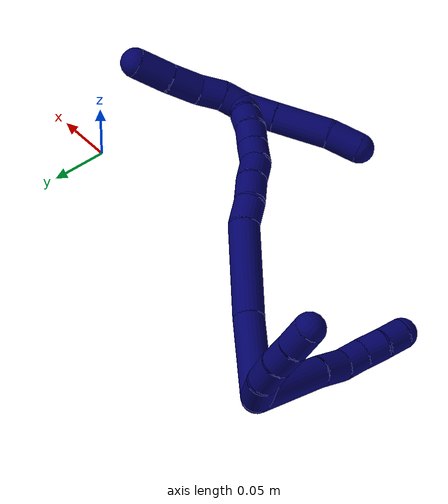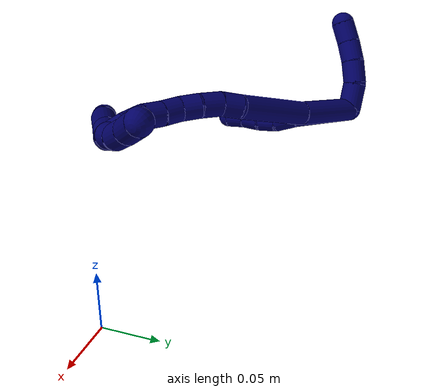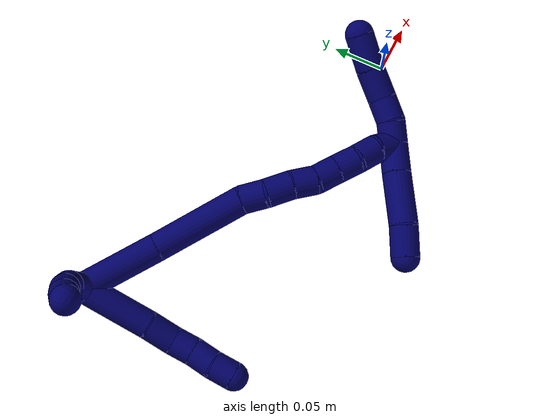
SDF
<sdf version="1.7">
 <world name="default">
  <model name="7">
   <static>0</static>
   <link name="7">
    <collision name="collision-cylinder-e_1_2_8">
     <pose>0.001528 -0.031947 -0.001751 1.62555 0.047731 0.050417</pose>
     <geometry><cylinder><radius>0.0125</radius><length>0.064063</length></cylinder></geometry>
     <surface>
      <friction><ode><mu>1.16</mu><mu2>1.16</mu2><slip1>0</slip1><slip2>0</slip2></ode></friction>
      <contact><ode><kp>1e+06</kp><kd>1</kd><max_vel>0</max_vel><min_depth>0.001</min_depth></ode></contact>
     </surface>
    </collision>
    <visual name="visual-cylinder-e_1_2_8">
     <pose>0.001528 -0.031947 -0.001751 1.62555 0.047731 0.050417</pose>
     <geometry><cylinder><radius>0.0125</radius><length>0.064063</length></cylinder></geometry>
     <material><ambient>0.003922 0 0.403922 1</ambient></material>
    </visual>
    <collision name="collision-cylinder-e_2_8_9">
     <pose>0.002289 -0.076691 -0.004036 1.61249 -0.059891 -0.062439</pose>
     <geometry><cylinder><radius>0.0125</radius><length>0.025662</length></cylinder></geometry>
     <surface>
      <friction><ode><mu>1.16</mu><mu2>1.16</mu2><slip1>0</slip1><slip2>0</slip2></ode></friction>
      <contact><ode><kp>1e+06</kp><kd>1</kd><max_vel>0</max_vel><min_depth>0.001</min_depth></ode></contact>
     </surface>
    </collision>
    <visual name="visual-cylinder-e_2_8_9">
     <pose>0.002289 -0.076691 -0.004036 1.61249 -0.059891 -0.062439</pose>
     <geometry><cylinder><radius>0.0125</radius><length>0.025662</length></cylinder></geometry>
     <material><ambient>0.003922 0 0.403922 1</ambient></material>
    </visual>
    <collision name="collision-cylinder-e_3_9_10">
     <pose>0.003766 -0.099305 -0.004779 1.59213 0.224835 0.229641</pose>
     <geometry><cylinder><radius>0.0125</radius><length>0.020146</length></cylinder></geometry>
     <surface>
      <friction><ode><mu>1.16</mu><mu2>1.16</mu2><slip1>0</slip1><slip2>0</slip2></ode></friction>
      <contact><ode><kp>1e+06</kp><kd>1</kd><max_vel>0</max_vel><min_depth>0.001</min_depth></ode></contact>
     </surface>
    </collision>
    <visual name="visual-cylinder-e_3_9_10">
     <pose>0.003766 -0.099305 -0.004779 1.59213 0.224835 0.229641</pose>
     <geometry><cylinder><radius>0.0125</radius><length>0.020146</length></cylinder></geometry>
     <material><ambient>0.003922 0 0.403922 1</ambient></material>
    </visual>
    <collision name="collision-cylinder-e_4_10_11">
     <pose>0.009074 -0.118613 -0.003922 1.45885 0.310285 0.277803</pose>
     <geometry><cylinder><radius>0.0125</radius><length>0.020058</length></cylinder></geometry>
     <surface>
      <friction><ode><mu>1.16</mu><mu2>1.16</mu2><slip1>0</slip1><slip2>0</slip2></ode></friction>
      <contact><ode><kp>1e+06</kp><kd>1</kd><max_vel>0</max_vel><min_depth>0.001</min_depth></ode></contact>
     </surface>
    </collision>
    <visual name="visual-cylinder-e_4_10_11">
     <pose>0.009074 -0.118613 -0.003922 1.45885 0.310285 0.277803</pose>
     <geometry><cylinder><radius>0.0125</radius><length>0.020058</length></cylinder></geometry>
     <material><ambient>0.003922 0 0.403922 1</ambient></material>
    </visual>
    <collision name="collision-cylinder-e_5_11_6">
     <pose>0.014363 -0.137888 -0.002985 1.58415 0.223754 0.226737</pose>
     <geometry><cylinder><radius>0.0125</radius><length>0.02007</length></cylinder></geometry>
     <surface>
      <friction><ode><mu>1.16</mu><mu2>1.16</mu2><slip1>0</slip1><slip2>0</slip2></ode></friction>
      <contact><ode><kp>1e+06</kp><kd>1</kd><max_vel>0</max_vel><min_depth>0.001</min_depth></ode></contact>
     </surface>
    </collision>
    <visual name="visual-cylinder-e_5_11_6">
     <pose>0.014363 -0.137888 -0.002985 1.58415 0.223754 0.226737</pose>
     <geometry><cylinder><radius>0.0125</radius><length>0.02007</length></cylinder></geometry>
     <material><ambient>0.003922 0 0.403922 1</ambient></material>
    </visual>
    <collision name="collision-cylinder-e_1_2_12">
     <pose>0.01281 0.005111 0.006041 -0.702152 1.01745 -0.402962</pose>
     <geometry><cylinder><radius>0.0125</radius><length>0.030114</length></cylinder></geometry>
     <surface>
      <friction><ode><mu>1.16</mu><mu2>1.16</mu2><slip1>0</slip1><slip2>0</slip2></ode></friction>
      <contact><ode><kp>1e+06</kp><kd>1</kd><max_vel>0</max_vel><min_depth>0.001</min_depth></ode></contact>
     </surface>
    </collision>
    <visual name="visual-cylinder-e_1_2_12">
     <pose>0.01281 0.005111 0.006041 -0.702152 1.01745 -0.402962</pose>
     <geometry><cylinder><radius>0.0125</radius><length>0.030114</length></cylinder></geometry>
     <material><ambient>0.003922 0 0.403922 1</ambient></material>
    </visual>
    <collision name="collision-cylinder-e_2_12_13">
     <pose>0.036894 0.010655 0.017296 -0.083077 1.13629 -0.053051</pose>
     <geometry><cylinder><radius>0.0125</radius><length>0.024858</length></cylinder></geometry>
     <surface>
      <friction><ode><mu>1.16</mu><mu2>1.16</mu2><slip1>0</slip1><slip2>0</slip2></ode></friction>
      <contact><ode><kp>1e+06</kp><kd>1</kd><max_vel>0</max_vel><min_depth>0.001</min_depth></ode></contact>
     </surface>
    </collision>
    <visual name="visual-cylinder-e_2_12_13">
     <pose>0.036894 0.010655 0.017296 -0.083077 1.13629 -0.053051</pose>
     <geometry><cylinder><radius>0.0125</radius><length>0.024858</length></cylinder></geometry>
     <material><ambient>0.003922 0 0.403922 1</ambient></material>
    </visual>
    <collision name="collision-cylinder-e_3_13_14">
     <pose>0.058159 0.010055 0.027366 0.209854 1.10961 0.130349</pose>
     <geometry><cylinder><radius>0.0125</radius><length>0.022312</length></cylinder></geometry>
     <surface>
      <friction><ode><mu>1.16</mu><mu2>1.16</mu2><slip1>0</slip1><slip2>0</slip2></ode></friction>
      <contact><ode><kp>1e+06</kp><kd>1</kd><max_vel>0</max_vel><min_depth>0.001</min_depth></ode></contact>
     </surface>
    </collision>
    <visual name="visual-cylinder-e_3_13_14">
     <pose>0.058159 0.010055 0.027366 0.209854 1.10961 0.130349</pose>
     <geometry><cylinder><radius>0.0125</radius><length>0.022312</length></cylinder></geometry>
     <material><ambient>0.003922 0 0.403922 1</ambient></material>
    </visual>
    <collision name="collision-cylinder-e_4_14_5">
     <pose>0.078498 0.007345 0.036593 0.366245 1.14593 0.237837</pose>
     <geometry><cylinder><radius>0.0125</radius><length>0.022716</length></cylinder></geometry>
     <surface>
      <friction><ode><mu>1.16</mu><mu2>1.16</mu2><slip1>0</slip1><slip2>0</slip2></ode></friction>
      <contact><ode><kp>1e+06</kp><kd>1</kd><max_vel>0</max_vel><min_depth>0.001</min_depth></ode></contact>
     </surface>
    </collision>
    <visual name="visual-cylinder-e_4_14_5">
     <pose>0.078498 0.007345 0.036593 0.366245 1.14593 0.237837</pose>
     <geometry><cylinder><radius>0.0125</radius><length>0.022716</length></cylinder></geometry>
     <material><ambient>0.003922 0 0.403922 1</ambient></material>
    </visual>
    <collision name="collision-cylinder-e_1_2_15">
     <pose>0.013041 -0.016824 -0.029174 2.6185 0.369447 1.21883</pose>
     <geometry><cylinder><radius>0.0125</radius><length>0.072227</length></cylinder></geometry>
     <surface>
      <friction><ode><mu>1.16</mu><mu2>1.16</mu2><slip1>0</slip1><slip2>0</slip2></ode></friction>
      <contact><ode><kp>1e+06</kp><kd>1</kd><max_vel>0</max_vel><min_depth>0.001</min_depth></ode></contact>
     </surface>
    </collision>
    <visual name="visual-cylinder-e_1_2_15">
     <pose>0.013041 -0.016824 -0.029174 2.6185 0.369447 1.21883</pose>
     <geometry><cylinder><radius>0.0125</radius><length>0.072227</length></cylinder></geometry>
     <material><ambient>0.003922 0 0.403922 1</ambient></material>
    </visual>
    <collision name="collision-cylinder-e_2_15_16">
     <pose>0.046218 -0.051807 -0.089491 2.61371 0.509377 1.53347</pose>
     <geometry><cylinder><radius>0.0125</radius><length>0.082588</length></cylinder></geometry>
     <surface>
      <friction><ode><mu>1.16</mu><mu2>1.16</mu2><slip1>0</slip1><slip2>0</slip2></ode></friction>
      <contact><ode><kp>1e+06</kp><kd>1</kd><max_vel>0</max_vel><min_depth>0.001</min_depth></ode></contact>
     </surface>
    </collision>
    <visual name="visual-cylinder-e_2_15_16">
     <pose>0.046218 -0.051807 -0.089491 2.61371 0.509377 1.53347</pose>
     <geometry><cylinder><radius>0.0125</radius><length>0.082588</length></cylinder></geometry>
     <material><ambient>0.003922 0 0.403922 1</ambient></material>
    </visual>
    <collision name="collision-cylinder-e_3_16_17">
     <pose>0.071741 -0.076719 -0.126866 2.31601 0.530282 1.11</pose>
     <geometry><cylinder><radius>0.0125</radius><length>0.021303</length></cylinder></geometry>
     <surface>
      <friction><ode><mu>1.16</mu><mu2>1.16</mu2><slip1>0</slip1><slip2>0</slip2></ode></friction>
      <contact><ode><kp>1e+06</kp><kd>1</kd><max_vel>0</max_vel><min_depth>0.001</min_depth></ode></contact>
     </surface>
    </collision>
    <visual name="visual-cylinder-e_3_16_17">
     <pose>0.071741 -0.076719 -0.126866 2.31601 0.530282 1.11</pose>
     <geometry><cylinder><radius>0.0125</radius><length>0.021303</length></cylinder></geometry>
     <material><ambient>0.003922 0 0.403922 1</ambient></material>
    </visual>
    <collision name="collision-cylinder-e_4_17_18">
     <pose>0.080797 -0.090484 -0.141481 2.44505 0.323855 0.845604</pose>
     <geometry><cylinder><radius>0.0125</radius><length>0.023056</length></cylinder></geometry>
     <surface>
      <friction><ode><mu>1.16</mu><mu2>1.16</mu2><slip1>0</slip1><slip2>0</slip2></ode></friction>
      <contact><ode><kp>1e+06</kp><kd>1</kd><max_vel>0</max_vel><min_depth>0.001</min_depth></ode></contact>
     </surface>
    </collision>
    <visual name="visual-cylinder-e_4_17_18">
     <pose>0.080797 -0.090484 -0.141481 2.44505 0.323855 0.845604</pose>
     <geometry><cylinder><radius>0.0125</radius><length>0.023056</length></cylinder></geometry>
     <material><ambient>0.003922 0 0.403922 1</ambient></material>
    </visual>
    <collision name="collision-cylinder-e_5_18_19">
     <pose>0.08688 -0.104726 -0.156693 2.32763 0.238161 0.541515</pose>
     <geometry><cylinder><radius>0.0125</radius><length>0.020469</length></cylinder></geometry>
     <surface>
      <friction><ode><mu>1.16</mu><mu2>1.16</mu2><slip1>0</slip1><slip2>0</slip2></ode></friction>
      <contact><ode><kp>1e+06</kp><kd>1</kd><max_vel>0</max_vel><min_depth>0.001</min_depth></ode></contact>
     </surface>
    </collision>
    <visual name="visual-cylinder-e_5_18_19">
     <pose>0.08688 -0.104726 -0.156693 2.32763 0.238161 0.541515</pose>
     <geometry><cylinder><radius>0.0125</radius><length>0.020469</length></cylinder></geometry>
     <material><ambient>0.003922 0 0.403922 1</ambient></material>
    </visual>
    <collision name="collision-cylinder-e_6_19_20">
     <pose>0.091314 -0.116901 -0.172048 2.61611 0.202098 0.721022</pose>
     <geometry><cylinder><radius>0.0125</radius><length>0.020122</length></cylinder></geometry>
     <surface>
      <friction><ode><mu>1.16</mu><mu2>1.16</mu2><slip1>0</slip1><slip2>0</slip2></ode></friction>
      <contact><ode><kp>1e+06</kp><kd>1</kd><max_vel>0</max_vel><min_depth>0.001</min_depth></ode></contact>
     </surface>
    </collision>
    <visual name="visual-cylinder-e_6_19_20">
     <pose>0.091314 -0.116901 -0.172048 2.61611 0.202098 0.721022</pose>
     <geometry><cylinder><radius>0.0125</radius><length>0.020122</length></cylinder></geometry>
     <material><ambient>0.003922 0 0.403922 1</ambient></material>
    </visual>
    <collision name="collision-cylinder-e_7_20_21">
     <pose>0.096076 -0.126864 -0.188811 2.59439 0.277033 0.922103</pose>
     <geometry><cylinder><radius>0.0125</radius><length>0.020056</length></cylinder></geometry>
     <surface>
      <friction><ode><mu>1.16</mu><mu2>1.16</mu2><slip1>0</slip1><slip2>0</slip2></ode></friction>
      <contact><ode><kp>1e+06</kp><kd>1</kd><max_vel>0</max_vel><min_depth>0.001</min_depth></ode></contact>
     </surface>
    </collision>
    <visual name="visual-cylinder-e_7_20_21">
     <pose>0.096076 -0.126864 -0.188811 2.59439 0.277033 0.922103</pose>
     <geometry><cylinder><radius>0.0125</radius><length>0.020056</length></cylinder></geometry>
     <material><ambient>0.003922 0 0.403922 1</ambient></material>
    </visual>
    <collision name="collision-cylinder-e_8_21_22">
     <pose>0.099337 -0.136451 -0.205939 2.66692 0.051802 0.213386</pose>
     <geometry><cylinder><radius>0.0125</radius><length>0.020018</length></cylinder></geometry>
     <surface>
      <friction><ode><mu>1.16</mu><mu2>1.16</mu2><slip1>0</slip1><slip2>0</slip2></ode></friction>
      <contact><ode><kp>1e+06</kp><kd>1</kd><max_vel>0</max_vel><min_depth>0.001</min_depth></ode></contact>
     </surface>
    </collision>
    <visual name="visual-cylinder-e_8_21_22">
     <pose>0.099337 -0.136451 -0.205939 2.66692 0.051802 0.213386</pose>
     <geometry><cylinder><radius>0.0125</radius><length>0.020018</length></cylinder></geometry>
     <material><ambient>0.003922 0 0.403922 1</ambient></material>
    </visual>
    <collision name="collision-cylinder-e_9_22_1">
     <pose>0.098425 -0.147158 -0.222697 2.47899 -0.14234 -0.408721</pose>
     <geometry><cylinder><radius>0.0125</radius><length>0.020161</length></cylinder></geometry>
     <surface>
      <friction><ode><mu>1.16</mu><mu2>1.16</mu2><slip1>0</slip1><slip2>0</slip2></ode></friction>
      <contact><ode><kp>1e+06</kp><kd>1</kd><max_vel>0</max_vel><min_depth>0.001</min_depth></ode></contact>
     </surface>
    </collision>
    <visual name="visual-cylinder-e_9_22_1">
     <pose>0.098425 -0.147158 -0.222697 2.47899 -0.14234 -0.408721</pose>
     <geometry><cylinder><radius>0.0125</radius><length>0.020161</length></cylinder></geometry>
     <material><ambient>0.003922 0 0.403922 1</ambient></material>
    </visual>
    <collision name="collision-cylinder-e_1_1_23">
     <pose>0.100091 -0.146674 -0.237633 -2.38887 0.309356 -0.751586</pose>
     <geometry><cylinder><radius>0.0125</radius><length>0.020338</length></cylinder></geometry>
     <surface>
      <friction><ode><mu>1.16</mu><mu2>1.16</mu2><slip1>0</slip1><slip2>0</slip2></ode></friction>
      <contact><ode><kp>1e+06</kp><kd>1</kd><max_vel>0</max_vel><min_depth>0.001</min_depth></ode></contact>
     </surface>
    </collision>
    <visual name="visual-cylinder-e_1_1_23">
     <pose>0.100091 -0.146674 -0.237633 -2.38887 0.309356 -0.751586</pose>
     <geometry><cylinder><radius>0.0125</radius><length>0.020338</length></cylinder></geometry>
     <material><ambient>0.003922 0 0.403922 1</ambient></material>
    </visual>
    <collision name="collision-cylinder-e_2_23_24">
     <pose>0.10435 -0.131598 -0.250868 -2.20084 0.110705 -0.217101</pose>
     <geometry><cylinder><radius>0.0125</radius><length>0.021057</length></cylinder></geometry>
     <surface>
      <friction><ode><mu>1.16</mu><mu2>1.16</mu2><slip1>0</slip1><slip2>0</slip2></ode></friction>
      <contact><ode><kp>1e+06</kp><kd>1</kd><max_vel>0</max_vel><min_depth>0.001</min_depth></ode></contact>
     </surface>
    </collision>
    <visual name="visual-cylinder-e_2_23_24">
     <pose>0.10435 -0.131598 -0.250868 -2.20084 0.110705 -0.217101</pose>
     <geometry><cylinder><radius>0.0125</radius><length>0.021057</length></cylinder></geometry>
     <material><ambient>0.003922 0 0.403922 1</ambient></material>
    </visual>
    <collision name="collision-cylinder-e_3_24_25">
     <pose>0.109662 -0.111576 -0.263357 -2.0711 0.304905 -0.507055</pose>
     <geometry><cylinder><radius>0.0125</radius><length>0.027641</length></cylinder></geometry>
     <surface>
      <friction><ode><mu>1.16</mu><mu2>1.16</mu2><slip1>0</slip1><slip2>0</slip2></ode></friction>
      <contact><ode><kp>1e+06</kp><kd>1</kd><max_vel>0</max_vel><min_depth>0.001</min_depth></ode></contact>
     </surface>
    </collision>
    <visual name="visual-cylinder-e_3_24_25">
     <pose>0.109662 -0.111576 -0.263357 -2.0711 0.304905 -0.507055</pose>
     <geometry><cylinder><radius>0.0125</radius><length>0.027641</length></cylinder></geometry>
     <material><ambient>0.003922 0 0.403922 1</ambient></material>
    </visual>
    <collision name="collision-cylinder-e_4_25_4">
     <pose>0.119056 -0.087655 -0.2774 -2.12935 0.345636 -0.610196</pose>
     <geometry><cylinder><radius>0.0125</radius><length>0.030964</length></cylinder></geometry>
     <surface>
      <friction><ode><mu>1.16</mu><mu2>1.16</mu2><slip1>0</slip1><slip2>0</slip2></ode></friction>
      <contact><ode><kp>1e+06</kp><kd>1</kd><max_vel>0</max_vel><min_depth>0.001</min_depth></ode></contact>
     </surface>
    </collision>
    <visual name="visual-cylinder-e_4_25_4">
     <pose>0.119056 -0.087655 -0.2774 -2.12935 0.345636 -0.610196</pose>
     <geometry><cylinder><radius>0.0125</radius><length>0.030964</length></cylinder></geometry>
     <material><ambient>0.003922 0 0.403922 1</ambient></material>
    </visual>
    <collision name="collision-cylinder-e_1_1_26">
     <pose>0.096826 -0.160898 -0.219535 0.603448 -0.012588 -0.003918</pose>
     <geometry><cylinder><radius>0.0125</radius><length>0.026792</length></cylinder></geometry>
     <surface>
      <friction><ode><mu>1.16</mu><mu2>1.16</mu2><slip1>0</slip1><slip2>0</slip2></ode></friction>
      <contact><ode><kp>1e+06</kp><kd>1</kd><max_vel>0</max_vel><min_depth>0.001</min_depth></ode></contact>
     </surface>
    </collision>
    <visual name="visual-cylinder-e_1_1_26">
     <pose>0.096826 -0.160898 -0.219535 0.603448 -0.012588 -0.003918</pose>
     <geometry><cylinder><radius>0.0125</radius><length>0.026792</length></cylinder></geometry>
     <material><ambient>0.003922 0 0.403922 1</ambient></material>
    </visual>
    <collision name="collision-cylinder-e_2_26_27">
     <pose>0.096293 -0.182079 -0.189814 0.628335 -0.015783 -0.005128</pose>
     <geometry><cylinder><radius>0.0125</radius><length>0.046212</length></cylinder></geometry>
     <surface>
      <friction><ode><mu>1.16</mu><mu2>1.16</mu2><slip1>0</slip1><slip2>0</slip2></ode></friction>
      <contact><ode><kp>1e+06</kp><kd>1</kd><max_vel>0</max_vel><min_depth>0.001</min_depth></ode></contact>
     </surface>
    </collision>
    <visual name="visual-cylinder-e_2_26_27">
     <pose>0.096293 -0.182079 -0.189814 0.628335 -0.015783 -0.005128</pose>
     <geometry><cylinder><radius>0.0125</radius><length>0.046212</length></cylinder></geometry>
     <material><ambient>0.003922 0 0.403922 1</ambient></material>
    </visual>
    <collision name="collision-cylinder-e_3_27_3">
     <pose>0.093552 -0.203323 -0.16027 0.61477 -0.176978 -0.056313</pose>
     <geometry><cylinder><radius>0.0125</radius><length>0.026995</length></cylinder></geometry>
     <surface>
      <friction><ode><mu>1.16</mu><mu2>1.16</mu2><slip1>0</slip1><slip2>0</slip2></ode></friction>
      <contact><ode><kp>1e+06</kp><kd>1</kd><max_vel>0</max_vel><min_depth>0.001</min_depth></ode></contact>
     </surface>
    </collision>
    <visual name="visual-cylinder-e_3_27_3">
     <pose>0.093552 -0.203323 -0.16027 0.61477 -0.176978 -0.056313</pose>
     <geometry><cylinder><radius>0.0125</radius><length>0.026995</length></cylinder></geometry>
     <material><ambient>0.003922 0 0.403922 1</ambient></material>
    </visual>
    <collision name="collision-sphere-3">
     <pose>0.091176 -0.210986 -0.149416 0 -0 0</pose>
     <geometry><sphere><radius>0.0125</radius></sphere></geometry>
     <surface>
      <friction><ode><mu>1.16</mu><mu2>1.16</mu2><slip1>0</slip1><slip2>0</slip2></ode></friction>
      <contact><ode><kp>1e+06</kp><kd>1</kd><max_vel>0</max_vel><min_depth>0.001</min_depth></ode></contact>
     </surface>
    </collision>
    <visual name="visual-sphere-3">
     <pose>0.091176 -0.210986 -0.149416 0 -0 0</pose>
     <geometry><sphere><radius>0.0125</radius></sphere></geometry>
     <material><ambient>0.003922 0 0.403922 1</ambient></material>
    </visual>
    <collision name="collision-sphere-27">
     <pose>0.095929 -0.195659 -0.171124 0 -0 0</pose>
     <geometry><sphere><radius>0.0125</radius></sphere></geometry>
     <surface>
      <friction><ode><mu>1.16</mu><mu2>1.16</mu2><slip1>0</slip1><slip2>0</slip2></ode></friction>
      <contact><ode><kp>1e+06</kp><kd>1</kd><max_vel>0</max_vel><min_depth>0.001</min_depth></ode></contact>
     </surface>
    </collision>
    <visual name="visual-sphere-27">
     <pose>0.095929 -0.195659 -0.171124 0 -0 0</pose>
     <geometry><sphere><radius>0.0125</radius></sphere></geometry>
     <material><ambient>0.003922 0 0.403922 1</ambient></material>
    </visual>
    <collision name="collision-sphere-26">
     <pose>0.096658 -0.168499 -0.208505 0 -0 0</pose>
     <geometry><sphere><radius>0.0125</radius></sphere></geometry>
     <surface>
      <friction><ode><mu>1.16</mu><mu2>1.16</mu2><slip1>0</slip1><slip2>0</slip2></ode></friction>
      <contact><ode><kp>1e+06</kp><kd>1</kd><max_vel>0</max_vel><min_depth>0.001</min_depth></ode></contact>
     </surface>
    </collision>
    <visual name="visual-sphere-26">
     <pose>0.096658 -0.168499 -0.208505 0 -0 0</pose>
     <geometry><sphere><radius>0.0125</radius></sphere></geometry>
     <material><ambient>0.003922 0 0.403922 1</ambient></material>
    </visual>
    <collision name="collision-sphere-4">
     <pose>0.124302 -0.075303 -0.28512 0 -0 0</pose>
     <geometry><sphere><radius>0.0125</radius></sphere></geometry>
     <surface>
      <friction><ode><mu>1.16</mu><mu2>1.16</mu2><slip1>0</slip1><slip2>0</slip2></ode></friction>
      <contact><ode><kp>1e+06</kp><kd>1</kd><max_vel>0</max_vel><min_depth>0.001</min_depth></ode></contact>
     </surface>
    </collision>
    <visual name="visual-sphere-4">
     <pose>0.124302 -0.075303 -0.28512 0 -0 0</pose>
     <geometry><sphere><radius>0.0125</radius></sphere></geometry>
     <material><ambient>0.003922 0 0.403922 1</ambient></material>
    </visual>
    <collision name="collision-sphere-25">
     <pose>0.113811 -0.100008 -0.26968 0 -0 0</pose>
     <geometry><sphere><radius>0.0125</radius></sphere></geometry>
     <surface>
      <friction><ode><mu>1.16</mu><mu2>1.16</mu2><slip1>0</slip1><slip2>0</slip2></ode></friction>
      <contact><ode><kp>1e+06</kp><kd>1</kd><max_vel>0</max_vel><min_depth>0.001</min_depth></ode></contact>
     </surface>
    </collision>
    <visual name="visual-sphere-25">
     <pose>0.113811 -0.100008 -0.26968 0 -0 0</pose>
     <geometry><sphere><radius>0.0125</radius></sphere></geometry>
     <material><ambient>0.003922 0 0.403922 1</ambient></material>
    </visual>
    <collision name="collision-sphere-24">
     <pose>0.105513 -0.123143 -0.257033 0 -0 0</pose>
     <geometry><sphere><radius>0.0125</radius></sphere></geometry>
     <surface>
      <friction><ode><mu>1.16</mu><mu2>1.16</mu2><slip1>0</slip1><slip2>0</slip2></ode></friction>
      <contact><ode><kp>1e+06</kp><kd>1</kd><max_vel>0</max_vel><min_depth>0.001</min_depth></ode></contact>
     </surface>
    </collision>
    <visual name="visual-sphere-24">
     <pose>0.105513 -0.123143 -0.257033 0 -0 0</pose>
     <geometry><sphere><radius>0.0125</radius></sphere></geometry>
     <material><ambient>0.003922 0 0.403922 1</ambient></material>
    </visual>
    <collision name="collision-sphere-23">
     <pose>0.103187 -0.140053 -0.244702 0 -0 0</pose>
     <geometry><sphere><radius>0.0125</radius></sphere></geometry>
     <surface>
      <friction><ode><mu>1.16</mu><mu2>1.16</mu2><slip1>0</slip1><slip2>0</slip2></ode></friction>
      <contact><ode><kp>1e+06</kp><kd>1</kd><max_vel>0</max_vel><min_depth>0.001</min_depth></ode></contact>
     </surface>
    </collision>
    <visual name="visual-sphere-23">
     <pose>0.103187 -0.140053 -0.244702 0 -0 0</pose>
     <geometry><sphere><radius>0.0125</radius></sphere></geometry>
     <material><ambient>0.003922 0 0.403922 1</ambient></material>
    </visual>
    <collision name="collision-sphere-1">
     <pose>0.096995 -0.153296 -0.230564 0 -0 0</pose>
     <geometry><sphere><radius>0.0125</radius></sphere></geometry>
     <surface>
      <friction><ode><mu>1.16</mu><mu2>1.16</mu2><slip1>0</slip1><slip2>0</slip2></ode></friction>
      <contact><ode><kp>1e+06</kp><kd>1</kd><max_vel>0</max_vel><min_depth>0.001</min_depth></ode></contact>
     </surface>
    </collision>
    <visual name="visual-sphere-1">
     <pose>0.096995 -0.153296 -0.230564 0 -0 0</pose>
     <geometry><sphere><radius>0.0125</radius></sphere></geometry>
     <material><ambient>0.003922 0 0.403922 1</ambient></material>
    </visual>
    <collision name="collision-sphere-22">
     <pose>0.099855 -0.141019 -0.21483 0 -0 0</pose>
     <geometry><sphere><radius>0.0125</radius></sphere></geometry>
     <surface>
      <friction><ode><mu>1.16</mu><mu2>1.16</mu2><slip1>0</slip1><slip2>0</slip2></ode></friction>
      <contact><ode><kp>1e+06</kp><kd>1</kd><max_vel>0</max_vel><min_depth>0.001</min_depth></ode></contact>
     </surface>
    </collision>
    <visual name="visual-sphere-22">
     <pose>0.099855 -0.141019 -0.21483 0 -0 0</pose>
     <geometry><sphere><radius>0.0125</radius></sphere></geometry>
     <material><ambient>0.003922 0 0.403922 1</ambient></material>
    </visual>
    <collision name="collision-sphere-21">
     <pose>0.098819 -0.131882 -0.197049 0 -0 0</pose>
     <geometry><sphere><radius>0.0125</radius></sphere></geometry>
     <surface>
      <friction><ode><mu>1.16</mu><mu2>1.16</mu2><slip1>0</slip1><slip2>0</slip2></ode></friction>
      <contact><ode><kp>1e+06</kp><kd>1</kd><max_vel>0</max_vel><min_depth>0.001</min_depth></ode></contact>
     </surface>
    </collision>
    <visual name="visual-sphere-21">
     <pose>0.098819 -0.131882 -0.197049 0 -0 0</pose>
     <geometry><sphere><radius>0.0125</radius></sphere></geometry>
     <material><ambient>0.003922 0 0.403922 1</ambient></material>
    </visual>
    <collision name="collision-sphere-6">
     <pose>0.01659 -0.147672 -0.003116 0 -0 0</pose>
     <geometry><sphere><radius>0.0125</radius></sphere></geometry>
     <surface>
      <friction><ode><mu>1.16</mu><mu2>1.16</mu2><slip1>0</slip1><slip2>0</slip2></ode></friction>
      <contact><ode><kp>1e+06</kp><kd>1</kd><max_vel>0</max_vel><min_depth>0.001</min_depth></ode></contact>
     </surface>
    </collision>
    <visual name="visual-sphere-6">
     <pose>0.01659 -0.147672 -0.003116 0 -0 0</pose>
     <geometry><sphere><radius>0.0125</radius></sphere></geometry>
     <material><ambient>0.003922 0 0.403922 1</ambient></material>
    </visual>
    <collision name="collision-sphere-11">
     <pose>0.012136 -0.128103 -0.002855 0 -0 0</pose>
     <geometry><sphere><radius>0.0125</radius></sphere></geometry>
     <surface>
      <friction><ode><mu>1.16</mu><mu2>1.16</mu2><slip1>0</slip1><slip2>0</slip2></ode></friction>
      <contact><ode><kp>1e+06</kp><kd>1</kd><max_vel>0</max_vel><min_depth>0.001</min_depth></ode></contact>
     </surface>
    </collision>
    <visual name="visual-sphere-11">
     <pose>0.012136 -0.128103 -0.002855 0 -0 0</pose>
     <geometry><sphere><radius>0.0125</radius></sphere></geometry>
     <material><ambient>0.003922 0 0.403922 1</ambient></material>
    </visual>
    <collision name="collision-sphere-10">
     <pose>0.006012 -0.109122 -0.004988 0 -0 0</pose>
     <geometry><sphere><radius>0.0125</radius></sphere></geometry>
     <surface>
      <friction><ode><mu>1.16</mu><mu2>1.16</mu2><slip1>0</slip1><slip2>0</slip2></ode></friction>
      <contact><ode><kp>1e+06</kp><kd>1</kd><max_vel>0</max_vel><min_depth>0.001</min_depth></ode></contact>
     </surface>
    </collision>
    <visual name="visual-sphere-10">
     <pose>0.006012 -0.109122 -0.004988 0 -0 0</pose>
     <geometry><sphere><radius>0.0125</radius></sphere></geometry>
     <material><ambient>0.003922 0 0.403922 1</ambient></material>
    </visual>
    <collision name="collision-sphere-9">
     <pose>0.001521 -0.089488 -0.00457 0 -0 0</pose>
     <geometry><sphere><radius>0.0125</radius></sphere></geometry>
     <surface>
      <friction><ode><mu>1.16</mu><mu2>1.16</mu2><slip1>0</slip1><slip2>0</slip2></ode></friction>
      <contact><ode><kp>1e+06</kp><kd>1</kd><max_vel>0</max_vel><min_depth>0.001</min_depth></ode></contact>
     </surface>
    </collision>
    <visual name="visual-sphere-9">
     <pose>0.001521 -0.089488 -0.00457 0 -0 0</pose>
     <geometry><sphere><radius>0.0125</radius></sphere></geometry>
     <material><ambient>0.003922 0 0.403922 1</ambient></material>
    </visual>
    <collision name="collision-sphere-2">
     <geometry><sphere><radius>0.0125</radius></sphere></geometry>
     <surface>
      <friction><ode><mu>1.16</mu><mu2>1.16</mu2><slip1>0</slip1><slip2>0</slip2></ode></friction>
      <contact><ode><kp>1e+06</kp><kd>1</kd><max_vel>0</max_vel><min_depth>0.001</min_depth></ode></contact>
     </surface>
    </collision>
    <visual name="visual-sphere-2">
     <geometry><sphere><radius>0.0125</radius></sphere></geometry>
     <material><ambient>0.003922 0 0.403922 1</ambient></material>
    </visual>
    <collision name="collision-sphere-19">
     <pose>0.089294 -0.111957 -0.163522 0 -0 0</pose>
     <geometry><sphere><radius>0.0125</radius></sphere></geometry>
     <surface>
      <friction><ode><mu>1.16</mu><mu2>1.16</mu2><slip1>0</slip1><slip2>0</slip2></ode></friction>
      <contact><ode><kp>1e+06</kp><kd>1</kd><max_vel>0</max_vel><min_depth>0.001</min_depth></ode></contact>
     </surface>
    </collision>
    <visual name="visual-sphere-19">
     <pose>0.089294 -0.111957 -0.163522 0 -0 0</pose>
     <geometry><sphere><radius>0.0125</radius></sphere></geometry>
     <material><ambient>0.003922 0 0.403922 1</ambient></material>
    </visual>
    <collision name="collision-sphere-8">
     <pose>0.003057 -0.063894 -0.003502 0 -0 0</pose>
     <geometry><sphere><radius>0.0125</radius></sphere></geometry>
     <surface>
      <friction><ode><mu>1.16</mu><mu2>1.16</mu2><slip1>0</slip1><slip2>0</slip2></ode></friction>
      <contact><ode><kp>1e+06</kp><kd>1</kd><max_vel>0</max_vel><min_depth>0.001</min_depth></ode></contact>
     </surface>
    </collision>
    <visual name="visual-sphere-8">
     <pose>0.003057 -0.063894 -0.003502 0 -0 0</pose>
     <geometry><sphere><radius>0.0125</radius></sphere></geometry>
     <material><ambient>0.003922 0 0.403922 1</ambient></material>
    </visual>
    <collision name="collision-sphere-12">
     <pose>0.02562 0.010221 0.012082 0 -0 0</pose>
     <geometry><sphere><radius>0.0125</radius></sphere></geometry>
     <surface>
      <friction><ode><mu>1.16</mu><mu2>1.16</mu2><slip1>0</slip1><slip2>0</slip2></ode></friction>
      <contact><ode><kp>1e+06</kp><kd>1</kd><max_vel>0</max_vel><min_depth>0.001</min_depth></ode></contact>
     </surface>
    </collision>
    <visual name="visual-sphere-12">
     <pose>0.02562 0.010221 0.012082 0 -0 0</pose>
     <geometry><sphere><radius>0.0125</radius></sphere></geometry>
     <material><ambient>0.003922 0 0.403922 1</ambient></material>
    </visual>
    <collision name="collision-sphere-13">
     <pose>0.048168 0.01109 0.022511 0 -0 0</pose>
     <geometry><sphere><radius>0.0125</radius></sphere></geometry>
     <surface>
      <friction><ode><mu>1.16</mu><mu2>1.16</mu2><slip1>0</slip1><slip2>0</slip2></ode></friction>
      <contact><ode><kp>1e+06</kp><kd>1</kd><max_vel>0</max_vel><min_depth>0.001</min_depth></ode></contact>
     </surface>
    </collision>
    <visual name="visual-sphere-13">
     <pose>0.048168 0.01109 0.022511 0 -0 0</pose>
     <geometry><sphere><radius>0.0125</radius></sphere></geometry>
     <material><ambient>0.003922 0 0.403922 1</ambient></material>
    </visual>
    <collision name="collision-sphere-14">
     <pose>0.06815 0.009021 0.032222 0 -0 0</pose>
     <geometry><sphere><radius>0.0125</radius></sphere></geometry>
     <surface>
      <friction><ode><mu>1.16</mu><mu2>1.16</mu2><slip1>0</slip1><slip2>0</slip2></ode></friction>
      <contact><ode><kp>1e+06</kp><kd>1</kd><max_vel>0</max_vel><min_depth>0.001</min_depth></ode></contact>
     </surface>
    </collision>
    <visual name="visual-sphere-14">
     <pose>0.06815 0.009021 0.032222 0 -0 0</pose>
     <geometry><sphere><radius>0.0125</radius></sphere></geometry>
     <material><ambient>0.003922 0 0.403922 1</ambient></material>
    </visual>
    <collision name="collision-sphere-5">
     <pose>0.088846 0.005668 0.040964 0 -0 0</pose>
     <geometry><sphere><radius>0.0125</radius></sphere></geometry>
     <surface>
      <friction><ode><mu>1.16</mu><mu2>1.16</mu2><slip1>0</slip1><slip2>0</slip2></ode></friction>
      <contact><ode><kp>1e+06</kp><kd>1</kd><max_vel>0</max_vel><min_depth>0.001</min_depth></ode></contact>
     </surface>
    </collision>
    <visual name="visual-sphere-5">
     <pose>0.088846 0.005668 0.040964 0 -0 0</pose>
     <geometry><sphere><radius>0.0125</radius></sphere></geometry>
     <material><ambient>0.003922 0 0.403922 1</ambient></material>
    </visual>
    <collision name="collision-sphere-15">
     <pose>0.026081 -0.033648 -0.058347 0 -0 0</pose>
     <geometry><sphere><radius>0.0125</radius></sphere></geometry>
     <surface>
      <friction><ode><mu>1.16</mu><mu2>1.16</mu2><slip1>0</slip1><slip2>0</slip2></ode></friction>
      <contact><ode><kp>1e+06</kp><kd>1</kd><max_vel>0</max_vel><min_depth>0.001</min_depth></ode></contact>
     </surface>
    </collision>
    <visual name="visual-sphere-15">
     <pose>0.026081 -0.033648 -0.058347 0 -0 0</pose>
     <geometry><sphere><radius>0.0125</radius></sphere></geometry>
     <material><ambient>0.003922 0 0.403922 1</ambient></material>
    </visual>
    <collision name="collision-sphere-16">
     <pose>0.066354 -0.069966 -0.120635 0 -0 0</pose>
     <geometry><sphere><radius>0.0125</radius></sphere></geometry>
     <surface>
      <friction><ode><mu>1.16</mu><mu2>1.16</mu2><slip1>0</slip1><slip2>0</slip2></ode></friction>
      <contact><ode><kp>1e+06</kp><kd>1</kd><max_vel>0</max_vel><min_depth>0.001</min_depth></ode></contact>
     </surface>
    </collision>
    <visual name="visual-sphere-16">
     <pose>0.066354 -0.069966 -0.120635 0 -0 0</pose>
     <geometry><sphere><radius>0.0125</radius></sphere></geometry>
     <material><ambient>0.003922 0 0.403922 1</ambient></material>
    </visual>
    <collision name="collision-sphere-17">
     <pose>0.077128 -0.083473 -0.133098 0 -0 0</pose>
     <geometry><sphere><radius>0.0125</radius></sphere></geometry>
     <surface>
      <friction><ode><mu>1.16</mu><mu2>1.16</mu2><slip1>0</slip1><slip2>0</slip2></ode></friction>
      <contact><ode><kp>1e+06</kp><kd>1</kd><max_vel>0</max_vel><min_depth>0.001</min_depth></ode></contact>
     </surface>
    </collision>
    <visual name="visual-sphere-17">
     <pose>0.077128 -0.083473 -0.133098 0 -0 0</pose>
     <geometry><sphere><radius>0.0125</radius></sphere></geometry>
     <material><ambient>0.003922 0 0.403922 1</ambient></material>
    </visual>
    <collision name="collision-sphere-18">
     <pose>0.084465 -0.097496 -0.149864 0 -0 0</pose>
     <geometry><sphere><radius>0.0125</radius></sphere></geometry>
     <surface>
      <friction><ode><mu>1.16</mu><mu2>1.16</mu2><slip1>0</slip1><slip2>0</slip2></ode></friction>
      <contact><ode><kp>1e+06</kp><kd>1</kd><max_vel>0</max_vel><min_depth>0.001</min_depth></ode></contact>
     </surface>
    </collision>
    <visual name="visual-sphere-18">
     <pose>0.084465 -0.097496 -0.149864 0 -0 0</pose>
     <geometry><sphere><radius>0.0125</radius></sphere></geometry>
     <material><ambient>0.003922 0 0.403922 1</ambient></material>
    </visual>
    <collision name="collision-sphere-20">
     <pose>0.093333 -0.121845 -0.180574 0 -0 0</pose>
     <geometry><sphere><radius>0.0125</radius></sphere></geometry>
     <surface>
      <friction><ode><mu>1.16</mu><mu2>1.16</mu2><slip1>0</slip1><slip2>0</slip2></ode></friction>
      <contact><ode><kp>1e+06</kp><kd>1</kd><max_vel>0</max_vel><min_depth>0.001</min_depth></ode></contact>
     </surface>
    </collision>
    <visual name="visual-sphere-20">
     <pose>0.093333 -0.121845 -0.180574 0 -0 0</pose>
     <geometry><sphere><radius>0.0125</radius></sphere></geometry>
     <material><ambient>0.003922 0 0.403922 1</ambient></material>
    </visual>
    <inertial>
     <pose>0.057696 -0.082761 -0.103856 0 -0 0</pose>
     <mass>0.75</mass>
     <inertia><ixx>0.000172</ixx><ixy>0</ixy><ixz>0</ixz><iyy>7.3e-05</iyy><iyz>0</iyz><izz>1.1e-05</izz></inertia>
    </inertial>
   </link>
   <pose>-0.352614 0.126403 0.07569 1.31615 -1.2649 -1.35589</pose>
  </model>
 </world>
</sdf>
